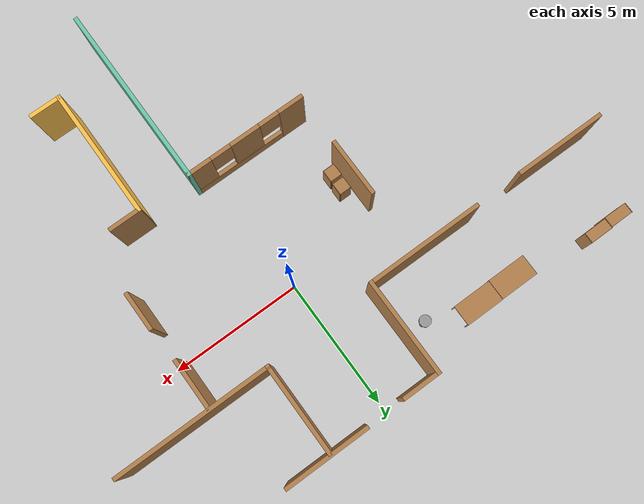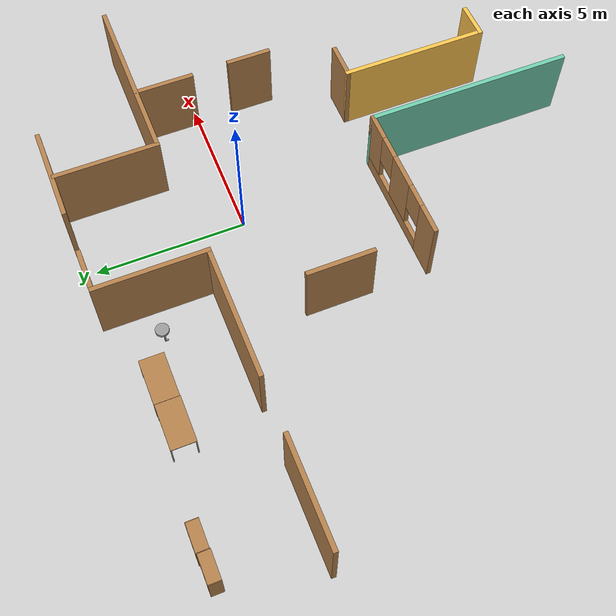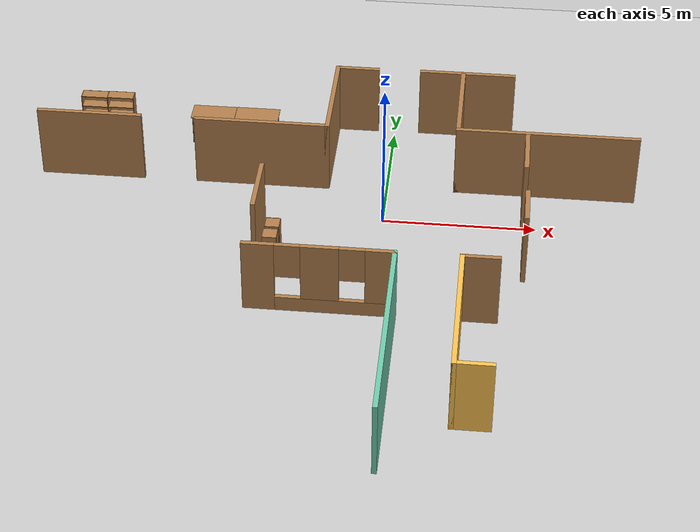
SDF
<sdf version="1.6">
 <world name="default">
  <model name="ground_plane">
   <static>1</static>
   <link name="link">
    <collision name="collision">
     <geometry><plane><normal>0 0 1</normal><size>100 100</size></plane></geometry>
     <surface>
      <contact><collide_bitmask>65535</collide_bitmask></contact>
      <friction><ode><mu>100</mu><mu2>50</mu2></ode></friction>
     </surface>
    </collision>
    <visual name="visual">
     <cast_shadows>0</cast_shadows>
     <geometry><plane><normal>0 0 1</normal><size>100 100</size></plane></geometry>
     <material>
      <script><uri>file://media/materials/scripts/gazebo.material</uri><name>Gazebo/Grey</name></script>
     </material>
    </visual>
   </link>
  </model>
  <model name="Building"><pose>-20.8921 18.7878 0 0 -0 0</pose><static>1</static></model>
  <model name="table">
   <static>1</static>
   <link name="link">
    <collision name="surface">
     <pose>0 0 1 0 -0 0</pose>
     <geometry><box><size>1.5 0.8 0.03</size></box></geometry>
     <surface><friction><ode><mu>0.6</mu><mu2>0.6</mu2></ode></friction></surface>
    </collision>
    <visual name="visual1">
     <pose>0 0 1 0 -0 0</pose>
     <geometry><box><size>1.5 0.8 0.03</size></box></geometry>
     <material>
      <script><uri>file://media/materials/scripts/gazebo.material</uri><name>Gazebo/Wood</name></script>
     </material>
    </visual>
    <collision name="front_left_leg">
     <pose>0.68 0.38 0.5 0 -0 0</pose>
     <geometry><cylinder><radius>0.02</radius><length>1</length></cylinder></geometry>
    </collision>
    <visual name="front_left_leg">
     <pose>0.68 0.38 0.5 0 -0 0</pose>
     <geometry><cylinder><radius>0.02</radius><length>1</length></cylinder></geometry>
     <material>
      <script><uri>file://media/materials/scripts/gazebo.material</uri><name>Gazebo/Grey</name></script>
     </material>
    </visual>
    <collision name="front_right_leg">
     <pose>0.68 -0.38 0.5 0 -0 0</pose>
     <geometry><cylinder><radius>0.02</radius><length>1</length></cylinder></geometry>
    </collision>
    <visual name="front_right_leg">
     <pose>0.68 -0.38 0.5 0 -0 0</pose>
     <geometry><cylinder><radius>0.02</radius><length>1</length></cylinder></geometry>
     <material>
      <script><uri>file://media/materials/scripts/gazebo.material</uri><name>Gazebo/Grey</name></script>
     </material>
    </visual>
    <collision name="back_right_leg">
     <pose>-0.68 -0.38 0.5 0 -0 0</pose>
     <geometry><cylinder><radius>0.02</radius><length>1</length></cylinder></geometry>
    </collision>
    <visual name="back_right_leg">
     <pose>-0.68 -0.38 0.5 0 -0 0</pose>
     <geometry><cylinder><radius>0.02</radius><length>1</length></cylinder></geometry>
     <material>
      <script><uri>file://media/materials/scripts/gazebo.material</uri><name>Gazebo/Grey</name></script>
     </material>
    </visual>
    <collision name="back_left_leg">
     <pose>-0.68 0.38 0.5 0 -0 0</pose>
     <geometry><cylinder><radius>0.02</radius><length>1</length></cylinder></geometry>
    </collision>
    <visual name="back_left_leg">
     <pose>-0.68 0.38 0.5 0 -0 0</pose>
     <geometry><cylinder><radius>0.02</radius><length>1</length></cylinder></geometry>
     <material>
      <script><uri>file://media/materials/scripts/gazebo.material</uri><name>Gazebo/Grey</name></script>
     </material>
    </visual>
   </link>
   <pose>-6.21534 4.30443 0 0 -0 0</pose>
  </model>
  <model name="table_0">
   <static>1</static>
   <link name="link">
    <collision name="surface">
     <pose>0 0 1 0 -0 0</pose>
     <geometry><box><size>1.5 0.8 0.03</size></box></geometry>
     <surface><friction><ode><mu>0.6</mu><mu2>0.6</mu2></ode></friction></surface>
    </collision>
    <visual name="visual1">
     <pose>0 0 1 0 -0 0</pose>
     <geometry><box><size>1.5 0.8 0.03</size></box></geometry>
     <material>
      <script><uri>file://media/materials/scripts/gazebo.material</uri><name>Gazebo/Wood</name></script>
     </material>
    </visual>
    <collision name="front_left_leg">
     <pose>0.68 0.38 0.5 0 -0 0</pose>
     <geometry><cylinder><radius>0.02</radius><length>1</length></cylinder></geometry>
    </collision>
    <visual name="front_left_leg">
     <pose>0.68 0.38 0.5 0 -0 0</pose>
     <geometry><cylinder><radius>0.02</radius><length>1</length></cylinder></geometry>
     <material>
      <script><uri>file://media/materials/scripts/gazebo.material</uri><name>Gazebo/Grey</name></script>
     </material>
    </visual>
    <collision name="front_right_leg">
     <pose>0.68 -0.38 0.5 0 -0 0</pose>
     <geometry><cylinder><radius>0.02</radius><length>1</length></cylinder></geometry>
    </collision>
    <visual name="front_right_leg">
     <pose>0.68 -0.38 0.5 0 -0 0</pose>
     <geometry><cylinder><radius>0.02</radius><length>1</length></cylinder></geometry>
     <material>
      <script><uri>file://media/materials/scripts/gazebo.material</uri><name>Gazebo/Grey</name></script>
     </material>
    </visual>
    <collision name="back_right_leg">
     <pose>-0.68 -0.38 0.5 0 -0 0</pose>
     <geometry><cylinder><radius>0.02</radius><length>1</length></cylinder></geometry>
    </collision>
    <visual name="back_right_leg">
     <pose>-0.68 -0.38 0.5 0 -0 0</pose>
     <geometry><cylinder><radius>0.02</radius><length>1</length></cylinder></geometry>
     <material>
      <script><uri>file://media/materials/scripts/gazebo.material</uri><name>Gazebo/Grey</name></script>
     </material>
    </visual>
    <collision name="back_left_leg">
     <pose>-0.68 0.38 0.5 0 -0 0</pose>
     <geometry><cylinder><radius>0.02</radius><length>1</length></cylinder></geometry>
    </collision>
    <visual name="back_left_leg">
     <pose>-0.68 0.38 0.5 0 -0 0</pose>
     <geometry><cylinder><radius>0.02</radius><length>1</length></cylinder></geometry>
     <material>
      <script><uri>file://media/materials/scripts/gazebo.material</uri><name>Gazebo/Grey</name></script>
     </material>
    </visual>
   </link>
   <pose>-4.70859 4.31668 0 0 -0 0</pose>
  </model>
  <model name="HumanoidRobot">
   <link name="link_0">
    <pose>-0 0.009 0.276 0 -0 0</pose>
    <inertial>
     <mass>1</mass>
     <inertia><ixx>0.145833</ixx><ixy>0</ixy><ixz>0</ixz><iyy>0.145833</iyy><iyz>0</iyz><izz>0.125</izz></inertia>
    </inertial>
    <visual name="visual">
     <geometry><cylinder><radius>0.22</radius><length>0.1</length></cylinder></geometry>
     <material>
      <lighting>1</lighting>
      <script><uri>file://media/materials/scripts/gazebo.material</uri><name>Gazebo/Grey</name></script>
      <shader type="pixel"><normal_map>__default__</normal_map></shader>
      <ambient>0.3 0.3 0.3 1</ambient>
      <diffuse>0.7 0.7 0.7 1</diffuse>
      <specular>0.01 0.01 0.01 1</specular>
      <emissive>0 0 0 1</emissive>
     </material>
    </visual>
    <collision name="collision">
     <geometry><cylinder><radius>0.22</radius><length>0.1</length></cylinder></geometry>
     <surface>
      <friction>
       <ode><mu>1</mu><mu2>1</mu2><fdir1>0 0 0</fdir1><slip1>0</slip1><slip2>0</slip2></ode>
       <torsional>
        <coefficient>1</coefficient>
        <patch_radius>0</patch_radius>
        <surface_radius>0</surface_radius>
        <use_patch_radius>1</use_patch_radius>
        <ode><slip>0</slip></ode>
       </torsional>
      </friction>
      <bounce><restitution_coefficient>0</restitution_coefficient><threshold>1e+06</threshold></bounce>
      <contact>
       <collide_without_contact>0</collide_without_contact>
       <collide_without_contact_bitmask>1</collide_without_contact_bitmask>
       <collide_bitmask>1</collide_bitmask>
       <ode>
        <soft_cfm>0</soft_cfm>
        <soft_erp>0.2</soft_erp>
        <kp>1e+13</kp>
        <kd>1</kd>
        <max_vel>0.01</max_vel>
        <min_depth>0</min_depth>
       </ode>
       <bullet>
        <split_impulse>1</split_impulse>
        <split_impulse_penetration_threshold>-0.01</split_impulse_penetration_threshold>
        <soft_cfm>0</soft_cfm>
        <soft_erp>0.2</soft_erp>
        <kp>1e+13</kp>
        <kd>1</kd>
       </bullet>
      </contact>
     </surface>
    </collision>
   </link>
   <link name="link_1">
    <pose>-0.155 -0.0485 0.026 0 -0 0</pose>
    <inertial>
     <mass>1</mass>
     <inertia>
      <ixx>0.166667</ixx>
      <ixy>0</ixy>
      <ixz>0</ixz>
      <iyy>0.166667</iyy>
      <iyz>0</iyz>
      <izz>0.166667</izz>
     </inertia>
    </inertial>
    <visual name="visual">
     <geometry><box><size>0.05 0.05 0.4</size></box></geometry>
     <material>
      <lighting>1</lighting>
      <script><uri>file://media/materials/scripts/gazebo.material</uri><name>Gazebo/Grey</name></script>
      <shader type="pixel"><normal_map>__default__</normal_map></shader>
      <ambient>0.3 0.3 0.3 1</ambient>
      <diffuse>0.7 0.7 0.7 1</diffuse>
      <specular>0.01 0.01 0.01 1</specular>
      <emissive>0 0 0 1</emissive>
     </material>
    </visual>
    <collision name="collision">
     <geometry><box><size>0.05 0.05 0.4</size></box></geometry>
     <surface>
      <friction>
       <ode><mu>1</mu><mu2>1</mu2><fdir1>0 0 0</fdir1><slip1>0</slip1><slip2>0</slip2></ode>
       <torsional>
        <coefficient>1</coefficient>
        <patch_radius>0</patch_radius>
        <surface_radius>0</surface_radius>
        <use_patch_radius>1</use_patch_radius>
        <ode><slip>0</slip></ode>
       </torsional>
      </friction>
      <bounce><restitution_coefficient>0</restitution_coefficient><threshold>1e+06</threshold></bounce>
      <contact>
       <collide_without_contact>0</collide_without_contact>
       <collide_without_contact_bitmask>1</collide_without_contact_bitmask>
       <collide_bitmask>1</collide_bitmask>
       <ode>
        <soft_cfm>0</soft_cfm>
        <soft_erp>0.2</soft_erp>
        <kp>1e+13</kp>
        <kd>1</kd>
        <max_vel>0.01</max_vel>
        <min_depth>0</min_depth>
       </ode>
       <bullet>
        <split_impulse>1</split_impulse>
        <split_impulse_penetration_threshold>-0.01</split_impulse_penetration_threshold>
        <soft_cfm>0</soft_cfm>
        <soft_erp>0.2</soft_erp>
        <kp>1e+13</kp>
        <kd>1</kd>
       </bullet>
      </contact>
     </surface>
    </collision>
   </link>
   <link name="link_1_clone">
    <pose>0.155 0.009 0.026 0 -0 0</pose>
    <inertial>
     <mass>1</mass>
     <inertia>
      <ixx>0.166667</ixx>
      <ixy>0</ixy>
      <ixz>0</ixz>
      <iyy>0.166667</iyy>
      <iyz>0</iyz>
      <izz>0.166667</izz>
     </inertia>
    </inertial>
    <visual name="visual">
     <geometry><box><size>0.05 0.05 0.4</size></box></geometry>
     <material>
      <lighting>1</lighting>
      <script><uri>file://media/materials/scripts/gazebo.material</uri><name>Gazebo/Grey</name></script>
      <shader type="pixel"><normal_map>__default__</normal_map></shader>
      <ambient>0.3 0.3 0.3 1</ambient>
      <diffuse>0.7 0.7 0.7 1</diffuse>
      <specular>0.01 0.01 0.01 1</specular>
      <emissive>0 0 0 1</emissive>
     </material>
    </visual>
    <collision name="collision">
     <geometry><box><size>0.05 0.05 0.4</size></box></geometry>
     <surface>
      <friction>
       <ode><mu>1</mu><mu2>1</mu2><fdir1>0 0 0</fdir1><slip1>0</slip1><slip2>0</slip2></ode>
       <torsional>
        <coefficient>1</coefficient>
        <patch_radius>0</patch_radius>
        <surface_radius>0</surface_radius>
        <use_patch_radius>1</use_patch_radius>
        <ode><slip>0</slip></ode>
       </torsional>
      </friction>
      <bounce><restitution_coefficient>0</restitution_coefficient><threshold>1e+06</threshold></bounce>
      <contact>
       <collide_without_contact>0</collide_without_contact>
       <collide_without_contact_bitmask>1</collide_without_contact_bitmask>
       <collide_bitmask>1</collide_bitmask>
       <ode>
        <soft_cfm>0</soft_cfm>
        <soft_erp>0.2</soft_erp>
        <kp>1e+13</kp>
        <kd>1</kd>
        <max_vel>0.01</max_vel>
        <min_depth>0</min_depth>
       </ode>
       <bullet>
        <split_impulse>1</split_impulse>
        <split_impulse_penetration_threshold>-0.01</split_impulse_penetration_threshold>
        <soft_cfm>0</soft_cfm>
        <soft_erp>0.2</soft_erp>
        <kp>1e+13</kp>
        <kd>1</kd>
       </bullet>
      </contact>
     </surface>
    </collision>
   </link>
   <link name="link_2">
    <pose>-0.155 -0.0135 -0.164 0 -0 0</pose>
    <inertial>
     <mass>1</mass>
     <inertia>
      <ixx>0.166667</ixx>
      <ixy>0</ixy>
      <ixz>0</ixz>
      <iyy>0.166667</iyy>
      <iyz>0</iyz>
      <izz>0.166667</izz>
     </inertia>
    </inertial>
    <visual name="visual">
     <geometry><box><size>0.05 0.12 0.02</size></box></geometry>
     <material>
      <lighting>1</lighting>
      <script><uri>file://media/materials/scripts/gazebo.material</uri><name>Gazebo/Grey</name></script>
      <shader type="pixel"><normal_map>__default__</normal_map></shader>
      <ambient>0.3 0.3 0.3 1</ambient>
      <diffuse>0.7 0.7 0.7 1</diffuse>
      <specular>0.01 0.01 0.01 1</specular>
      <emissive>0 0 0 1</emissive>
     </material>
    </visual>
    <collision name="collision">
     <geometry><box><size>0.05 0.12 0.02</size></box></geometry>
     <surface>
      <friction>
       <ode><mu>1</mu><mu2>1</mu2><fdir1>0 0 0</fdir1><slip1>0</slip1><slip2>0</slip2></ode>
       <torsional>
        <coefficient>1</coefficient>
        <patch_radius>0</patch_radius>
        <surface_radius>0</surface_radius>
        <use_patch_radius>1</use_patch_radius>
        <ode><slip>0</slip></ode>
       </torsional>
      </friction>
      <bounce><restitution_coefficient>0</restitution_coefficient><threshold>1e+06</threshold></bounce>
      <contact>
       <collide_without_contact>0</collide_without_contact>
       <collide_without_contact_bitmask>1</collide_without_contact_bitmask>
       <collide_bitmask>1</collide_bitmask>
       <ode>
        <soft_cfm>0</soft_cfm>
        <soft_erp>0.2</soft_erp>
        <kp>1e+13</kp>
        <kd>1</kd>
        <max_vel>0.01</max_vel>
        <min_depth>0</min_depth>
       </ode>
       <bullet>
        <split_impulse>1</split_impulse>
        <split_impulse_penetration_threshold>-0.01</split_impulse_penetration_threshold>
        <soft_cfm>0</soft_cfm>
        <soft_erp>0.2</soft_erp>
        <kp>1e+13</kp>
        <kd>1</kd>
       </bullet>
      </contact>
     </surface>
    </collision>
   </link>
   <link name="link_2_clone">
    <pose>0.155 0.044 -0.164 0 -0 0</pose>
    <inertial>
     <mass>1</mass>
     <inertia>
      <ixx>0.166667</ixx>
      <ixy>0</ixy>
      <ixz>0</ixz>
      <iyy>0.166667</iyy>
      <iyz>0</iyz>
      <izz>0.166667</izz>
     </inertia>
    </inertial>
    <visual name="visual">
     <geometry><box><size>0.05 0.12 0.02</size></box></geometry>
     <material>
      <lighting>1</lighting>
      <script><uri>file://media/materials/scripts/gazebo.material</uri><name>Gazebo/Grey</name></script>
      <shader type="pixel"><normal_map>__default__</normal_map></shader>
      <ambient>0.3 0.3 0.3 1</ambient>
      <diffuse>0.7 0.7 0.7 1</diffuse>
      <specular>0.01 0.01 0.01 1</specular>
      <emissive>0 0 0 1</emissive>
     </material>
    </visual>
    <collision name="collision">
     <geometry><box><size>0.05 0.12 0.02</size></box></geometry>
     <surface>
      <friction>
       <ode><mu>1</mu><mu2>1</mu2><fdir1>0 0 0</fdir1><slip1>0</slip1><slip2>0</slip2></ode>
       <torsional>
        <coefficient>1</coefficient>
        <patch_radius>0</patch_radius>
        <surface_radius>0</surface_radius>
        <use_patch_radius>1</use_patch_radius>
        <ode><slip>0</slip></ode>
       </torsional>
      </friction>
      <bounce><restitution_coefficient>0</restitution_coefficient><threshold>1e+06</threshold></bounce>
      <contact>
       <collide_without_contact>0</collide_without_contact>
       <collide_without_contact_bitmask>1</collide_without_contact_bitmask>
       <collide_bitmask>1</collide_bitmask>
       <ode>
        <soft_cfm>0</soft_cfm>
        <soft_erp>0.2</soft_erp>
        <kp>1e+13</kp>
        <kd>1</kd>
        <max_vel>0.01</max_vel>
        <min_depth>0</min_depth>
       </ode>
       <bullet>
        <split_impulse>1</split_impulse>
        <split_impulse_penetration_threshold>-0.01</split_impulse_penetration_threshold>
        <soft_cfm>0</soft_cfm>
        <soft_erp>0.2</soft_erp>
        <kp>1e+13</kp>
        <kd>1</kd>
       </bullet>
      </contact>
     </surface>
    </collision>
   </link>
   <joint name="link_0_JOINT_2" type="revolute">
    <parent>link_0</parent>
    <child>link_1</child>
    <axis>
     <xyz>0 0 1</xyz>
     <use_parent_model_frame>0</use_parent_model_frame>
     <limit>
      <lower>-1.79769e+308</lower>
      <upper>1.79769e+308</upper>
      <effort>-1</effort>
      <velocity>-1</velocity>
     </limit>
     <dynamics>
      <spring_reference>0</spring_reference>
      <spring_stiffness>0</spring_stiffness>
      <damping>0</damping>
     </dynamics>
    </axis>
    <physics>
     <ode><limit><cfm>0</cfm><erp>0.2</erp></limit><suspension><cfm>0</cfm><erp>0.2</erp></suspension></ode>
    </physics>
   </joint>
   <joint name="link_0_JOINT_3" type="revolute">
    <parent>link_0</parent>
    <child>link_1_clone</child>
    <axis>
     <xyz>0 0 1</xyz>
     <use_parent_model_frame>0</use_parent_model_frame>
     <limit>
      <lower>-1.79769e+308</lower>
      <upper>1.79769e+308</upper>
      <effort>-1</effort>
      <velocity>-1</velocity>
     </limit>
     <dynamics>
      <spring_reference>0</spring_reference>
      <spring_stiffness>0</spring_stiffness>
      <damping>0</damping>
     </dynamics>
    </axis>
    <physics>
     <ode><limit><cfm>0</cfm><erp>0.2</erp></limit><suspension><cfm>0</cfm><erp>0.2</erp></suspension></ode>
    </physics>
   </joint>
   <joint name="link_1_JOINT_4" type="revolute">
    <parent>link_1</parent>
    <child>link_2</child>
    <axis>
     <xyz>0 0 1</xyz>
     <use_parent_model_frame>0</use_parent_model_frame>
     <limit>
      <lower>-1.79769e+308</lower>
      <upper>1.79769e+308</upper>
      <effort>-1</effort>
      <velocity>-1</velocity>
     </limit>
     <dynamics>
      <spring_reference>0</spring_reference>
      <spring_stiffness>0</spring_stiffness>
      <damping>0</damping>
     </dynamics>
    </axis>
    <physics>
     <ode><limit><cfm>0</cfm><erp>0.2</erp></limit><suspension><cfm>0</cfm><erp>0.2</erp></suspension></ode>
    </physics>
   </joint>
   <joint name="link_1_clone_JOINT_5" type="revolute">
    <parent>link_1_clone</parent>
    <child>link_2_clone</child>
    <axis>
     <xyz>0 0 1</xyz>
     <use_parent_model_frame>0</use_parent_model_frame>
     <limit>
      <lower>-1.79769e+308</lower>
      <upper>1.79769e+308</upper>
      <effort>-1</effort>
      <velocity>-1</velocity>
     </limit>
     <dynamics>
      <spring_reference>0</spring_reference>
      <spring_stiffness>0</spring_stiffness>
      <damping>0</damping>
     </dynamics>
    </axis>
    <physics>
     <ode><limit><cfm>0</cfm><erp>0.2</erp></limit><suspension><cfm>0</cfm><erp>0.2</erp></suspension></ode>
    </physics>
   </joint>
   <static>0</static>
   <pose>-2.9489 3.72008 0.174 -1e-06 1e-06 -3.04793</pose>
  </model>
  <model name="Untitled">
   <pose>-1.7355 -3.158 0 0 -0 0</pose>
   <link name="Wall_11">
    <collision name="Wall_11_Collision">
     <geometry><box><size>3.25 0.15 2.5</size></box></geometry>
     <pose>0 0 1.25 0 -0 0</pose>
    </collision>
    <visual name="Wall_11_Visual">
     <pose>0 0 1.25 0 -0 0</pose>
     <geometry><box><size>3.25 0.15 2.5</size></box></geometry>
     <material>
      <script><uri>file://media/materials/scripts/gazebo.material</uri><name>Gazebo/Wood</name></script>
      <ambient>1 1 1 1</ambient>
     </material>
     <meta><layer>0</layer></meta>
    </visual>
    <pose>4.1755 8.508 0 0 -0 0</pose>
   </link>
   <link name="Wall_13">
    <collision name="Wall_13_Collision">
     <geometry><box><size>3.5 0.15 2.5</size></box></geometry>
     <pose>0 0 1.25 0 -0 0</pose>
    </collision>
    <visual name="Wall_13_Visual">
     <pose>0 0 1.25 0 -0 0</pose>
     <geometry><box><size>3.5 0.15 2.5</size></box></geometry>
     <material>
      <script><uri>file://media/materials/scripts/gazebo.material</uri><name>Gazebo/Wood</name></script>
      <ambient>1 1 1 1</ambient>
     </material>
     <meta><layer>0</layer></meta>
    </visual>
    <pose>4.0285 6.764 0 0 0 -1.5708</pose>
   </link>
   <link name="Wall_14">
    <collision name="Wall_14_Collision">
     <geometry><box><size>6 0.15 2.5</size></box></geometry>
     <pose>0 0 1.25 0 -0 0</pose>
    </collision>
    <visual name="Wall_14_Visual">
     <pose>0 0 1.25 0 -0 0</pose>
     <geometry><box><size>6 0.15 2.5</size></box></geometry>
     <material>
      <script><uri>file://media/materials/scripts/gazebo.material</uri><name>Gazebo/Wood</name></script>
      <ambient>1 1 1 1</ambient>
     </material>
     <meta><layer>0</layer></meta>
    </visual>
    <pose>6.9535 5.089 0 0 -0 0</pose>
   </link>
   <link name="Wall_18">
    <collision name="Wall_18_Collision">
     <geometry><box><size>3.5 0.15 2.5</size></box></geometry>
     <pose>0 0 1.25 0 -0 0</pose>
    </collision>
    <visual name="Wall_18_Visual">
     <pose>0 0 1.25 0 -0 0</pose>
     <geometry><box><size>3.5 0.15 2.5</size></box></geometry>
     <material>
      <script><uri>file://media/materials/scripts/gazebo.material</uri><name>Gazebo/Wood</name></script>
      <ambient>1 1 1 1</ambient>
     </material>
     <meta><layer>0</layer></meta>
    </visual>
    <pose>-8.2035 4.851 0 0 -0 3.14159</pose>
   </link>
   <link name="Wall_22">
    <pose>0.1645 -1.658 0 0 -0 0</pose>
    <visual name="Wall_22_Visual_0">
     <pose>-1.8705 0 1.25 0 -0 0</pose>
     <geometry><box><size>1.009 0.15 2.5</size></box></geometry>
     <material>
      <script><uri>file://media/materials/scripts/gazebo.material</uri><name>Gazebo/Wood</name></script>
      <ambient>1 0.764706 0.305882 1</ambient>
     </material>
     <meta><layer>0</layer></meta>
    </visual>
    <collision name="Wall_22_Collision_0">
     <geometry><box><size>1.009 0.15 2.5</size></box></geometry>
     <pose>-1.8705 0 1.25 0 -0 0</pose>
    </collision>
    <visual name="Wall_22_Visual_1">
     <pose>0.5045 0 0.25 0 -0 0</pose>
     <geometry><box><size>3.741 0.15 0.5</size></box></geometry>
     <material>
      <script><uri>file://media/materials/scripts/gazebo.material</uri><name>Gazebo/Wood</name></script>
      <ambient>1 0.764706 0.305882 1</ambient>
     </material>
     <meta><layer>0</layer></meta>
    </visual>
    <collision name="Wall_22_Collision_1">
     <geometry><box><size>3.741 0.15 0.5</size></box></geometry>
     <pose>0.5045 0 0.25 0 -0 0</pose>
    </collision>
    <visual name="Wall_22_Visual_2">
     <pose>0.023 0 1.5 0 -0 0</pose>
     <geometry><box><size>1.178 0.15 2</size></box></geometry>
     <material>
      <script><uri>file://media/materials/scripts/gazebo.material</uri><name>Gazebo/Wood</name></script>
      <ambient>1 0.764706 0.305882 1</ambient>
     </material>
     <meta><layer>0</layer></meta>
    </visual>
    <collision name="Wall_22_Collision_2">
     <geometry><box><size>1.178 0.15 2</size></box></geometry>
     <pose>0.023 0 1.5 0 -0 0</pose>
    </collision>
    <visual name="Wall_22_Visual_3">
     <pose>1.8935 0 1.5 0 -0 0</pose>
     <geometry><box><size>0.963 0.15 2</size></box></geometry>
     <material>
      <script><uri>file://media/materials/scripts/gazebo.material</uri><name>Gazebo/Wood</name></script>
      <ambient>1 0.764706 0.305882 1</ambient>
     </material>
     <meta><layer>0</layer></meta>
    </visual>
    <collision name="Wall_22_Collision_3">
     <geometry><box><size>0.963 0.15 2</size></box></geometry>
     <pose>1.8935 0 1.5 0 -0 0</pose>
    </collision>
    <visual name="Wall_22_Visual_4">
     <pose>-0.966 0 1.9 0 -0 0</pose>
     <geometry><box><size>0.8 0.15 1.2</size></box></geometry>
     <material>
      <script><uri>file://media/materials/scripts/gazebo.material</uri><name>Gazebo/Wood</name></script>
      <ambient>1 0.764706 0.305882 1</ambient>
     </material>
     <meta><layer>0</layer></meta>
    </visual>
    <collision name="Wall_22_Collision_4">
     <geometry><box><size>0.8 0.15 1.2</size></box></geometry>
     <pose>-0.966 0 1.9 0 -0 0</pose>
    </collision>
    <visual name="Wall_22_Visual_5">
     <pose>1.012 0 1.9 0 -0 0</pose>
     <geometry><box><size>0.8 0.15 1.2</size></box></geometry>
     <material>
      <script><uri>file://media/materials/scripts/gazebo.material</uri><name>Gazebo/Wood</name></script>
      <ambient>1 0.764706 0.305882 1</ambient>
     </material>
     <meta><layer>0</layer></meta>
    </visual>
    <collision name="Wall_22_Collision_5">
     <geometry><box><size>0.8 0.15 1.2</size></box></geometry>
     <pose>1.012 0 1.9 0 -0 0</pose>
    </collision>
   </link>
   <link name="Wall_24">
    <collision name="Wall_24_Collision">
     <geometry><box><size>1.25 0.15 2.5</size></box></geometry>
     <pose>0 0 1.25 0 -0 0</pose>
    </collision>
    <visual name="Wall_24_Visual">
     <pose>0 0 1.25 0 -0 0</pose>
     <geometry><box><size>1.25 0.15 2.5</size></box></geometry>
     <material>
      <script><uri>file://media/materials/scripts/gazebo.material</uri><name>Gazebo/Wood</name></script>
      <ambient>1 1 1 1</ambient>
     </material>
     <meta><layer>0</layer></meta>
    </visual>
    <pose>5.0385 -1.635 0 0 -0 0</pose>
   </link>
   <link name="Wall_26">
    <collision name="Wall_26_Collision">
     <geometry><box><size>2 0.15 2.5</size></box></geometry>
     <pose>0 0 1.25 0 -0 0</pose>
    </collision>
    <visual name="Wall_26_Visual">
     <pose>0 0 1.25 0 -0 0</pose>
     <geometry><box><size>2 0.15 2.5</size></box></geometry>
     <material>
      <script><uri>file://media/materials/scripts/gazebo.material</uri><name>Gazebo/Wood</name></script>
      <ambient>1 1 1 1</ambient>
     </material>
     <meta><layer>0</layer></meta>
    </visual>
    <pose>6.3055 4.133 0 0 0 -1.5708</pose>
   </link>
   <link name="Wall_29">
    <collision name="Wall_29_Collision">
     <geometry><box><size>1.5 0.15 2.5</size></box></geometry>
     <pose>0 0 1.25 0 -0 0</pose>
    </collision>
    <visual name="Wall_29_Visual">
     <pose>0 0 1.25 0 -0 0</pose>
     <geometry><box><size>1.5 0.15 2.5</size></box></geometry>
     <material>
      <script><uri>file://media/materials/scripts/gazebo.material</uri><name>Gazebo/Wood</name></script>
      <ambient>1 1 1 1</ambient>
     </material>
     <meta><layer>0</layer></meta>
    </visual>
    <pose>6.3745 1.163 0 0 0 -1.5708</pose>
   </link>
   <link name="Wall_31">
    <collision name="Wall_31_Collision">
     <geometry><box><size>4.5 0.15 2.5</size></box></geometry>
     <pose>0 0 1.25 0 -0 0</pose>
    </collision>
    <visual name="Wall_31_Visual">
     <pose>0 0 1.25 0 -0 0</pose>
     <geometry><box><size>4.5 0.15 2.5</size></box></geometry>
     <material>
      <script><uri>file://media/materials/scripts/gazebo.material</uri><name>Gazebo/Wood</name></script>
      <ambient>1 1 1 1</ambient>
     </material>
     <meta><layer>0</layer></meta>
    </visual>
    <pose>-2.4445 4.874 0 0 -0 0</pose>
   </link>
   <link name="Wall_32">
    <collision name="Wall_32_Collision">
     <geometry><box><size>3.75 0.15 2.5</size></box></geometry>
     <pose>0 0 1.25 0 -0 0</pose>
    </collision>
    <visual name="Wall_32_Visual">
     <pose>0 0 1.25 0 -0 0</pose>
     <geometry><box><size>3.75 0.15 2.5</size></box></geometry>
     <material>
      <script><uri>file://media/materials/scripts/gazebo.material</uri><name>Gazebo/Wood</name></script>
      <ambient>1 1 1 1</ambient>
     </material>
     <meta><layer>0</layer></meta>
    </visual>
    <pose>-0.2695 6.674 0 0 -0 1.5708</pose>
   </link>
   <link name="Wall_33">
    <collision name="Wall_33_Collision">
     <geometry><box><size>1.5 0.15 2.5</size></box></geometry>
     <pose>0 0 1.25 0 -0 0</pose>
    </collision>
    <visual name="Wall_33_Visual">
     <pose>0 0 1.25 0 -0 0</pose>
     <geometry><box><size>1.5 0.15 2.5</size></box></geometry>
     <material>
      <script><uri>file://media/materials/scripts/gazebo.material</uri><name>Gazebo/Wood</name></script>
      <ambient>1 1 1 1</ambient>
     </material>
     <meta><layer>0</layer></meta>
    </visual>
    <pose>0.4055 8.474 0 0 -0 0</pose>
   </link>
   <link name="Wall_40">
    <collision name="Wall_40_Collision">
     <geometry><box><size>7 0.15 2.5</size></box></geometry>
     <pose>0 0 1.25 0 -0 0</pose>
    </collision>
    <visual name="Wall_40_Visual">
     <pose>0 0 1.25 0 -0 0</pose>
     <geometry><box><size>7 0.15 2.5</size></box></geometry>
     <material>
      <script><uri>file://media/materials/scripts/gazebo.material</uri><name>Gazebo/Grey</name></script>
      <ambient>0.435294 0.796078 0.67451 1</ambient>
     </material>
     <meta><layer>0</layer></meta>
    </visual>
    <pose>2.4645 -5.083 0 0 0 -1.5708</pose>
   </link>
   <link name="Wall_42">
    <collision name="Wall_42_Collision">
     <geometry><box><size>5 0.15 2.5</size></box></geometry>
     <pose>0 0 1.25 0 -0 0</pose>
    </collision>
    <visual name="Wall_42_Visual">
     <pose>0 0 1.25 0 -0 0</pose>
     <geometry><box><size>5 0.15 2.5</size></box></geometry>
     <material>
      <script><uri>file://media/materials/scripts/gazebo.material</uri><name>Gazebo/Grey</name></script>
      <ambient>1 0.764706 0.305882 1</ambient>
     </material>
     <meta><layer>0</layer></meta>
    </visual>
    <pose>4.4885 -4.06 0 0 0 -1.5708</pose>
   </link>
   <link name="Wall_43">
    <collision name="Wall_43_Collision">
     <geometry><box><size>1.25 0.15 2.5</size></box></geometry>
     <pose>0 0 1.25 0 -0 0</pose>
    </collision>
    <visual name="Wall_43_Visual">
     <pose>0 0 1.25 0 -0 0</pose>
     <geometry><box><size>1.25 0.15 2.5</size></box></geometry>
     <material>
      <script><uri>file://media/materials/scripts/gazebo.material</uri><name>Gazebo/Grey</name></script>
      <ambient>1 0.764706 0.305882 1</ambient>
     </material>
     <meta><layer>0</layer></meta>
    </visual>
    <pose>5.0385 -6.485 0 0 -0 0</pose>
   </link>
   <link name="Wall_6">
    <collision name="Wall_6_Collision">
     <geometry><box><size>2.25 0.15 2.5</size></box></geometry>
     <pose>0 0 1.25 0 -0 0</pose>
    </collision>
    <visual name="Wall_6_Visual">
     <pose>0 0 1.25 0 -0 0</pose>
     <geometry><box><size>2.25 0.15 2.5</size></box></geometry>
     <material>
      <script><uri>file://media/materials/scripts/gazebo.material</uri><name>Gazebo/Wood</name></script>
      <ambient>1 1 1 1</ambient>
     </material>
     <meta><layer>0</layer></meta>
    </visual>
    <pose>-2.1125 1.392 0 0 0 -1.5708</pose>
   </link>
   <static>1</static>
  </model>
  <model name="cabinet">
   <static>1</static>
   <link name="cabinet_bottom_plate">
    <inertial>
     <pose>0 0 -1 0 -0 0</pose>
     <inertia><ixx>2.05</ixx><ixy>0</ixy><ixz>0</ixz><iyy>2.05</iyy><iyz>0</iyz><izz>2.05</izz></inertia>
     <mass>25</mass>
    </inertial>
    <collision name="cabinet_bottom_plate_geom">
     <pose>0 0 0.01 0 -0 0</pose>
     <geometry><box><size>0.45 0.45 0.02</size></box></geometry>
    </collision>
    <visual name="cabinet_bottom_plate_geom_visual">
     <pose>0 0 0.01 0 -0 0</pose>
     <geometry><box><size>0.45 0.45 0.02</size></box></geometry>
     <material>
      <script><uri>file://media/materials/scripts/gazebo.material</uri><name>Gazebo/Wood</name></script>
     </material>
    </visual>
    <collision name="cabinet_bottom_plate_geom_cabinet_back_plate">
     <pose>0.235 0 0.51 0 -0 0</pose>
     <geometry><box><size>0.02 0.45 1.02</size></box></geometry>
    </collision>
    <visual name="cabinet_bottom_plate_geom_cabinet_back_plate_visual">
     <pose>0.235 0 0.51 0 -0 0</pose>
     <geometry><box><size>0.02 0.45 1.02</size></box></geometry>
     <material>
      <script><uri>file://media/materials/scripts/gazebo.material</uri><name>Gazebo/Wood</name></script>
     </material>
    </visual>
    <collision name="cabinet_bottom_plate_geom_cabinet_left_plate">
     <pose>0 0.235 0.51 0 -0 0</pose>
     <geometry><box><size>0.45 0.02 1.02</size></box></geometry>
    </collision>
    <visual name="cabinet_bottom_plate_geom_cabinet_left_plate_visual">
     <pose>0 0.235 0.51 0 -0 0</pose>
     <geometry><box><size>0.45 0.02 1.02</size></box></geometry>
     <material>
      <script><uri>file://media/materials/scripts/gazebo.material</uri><name>Gazebo/Wood</name></script>
     </material>
    </visual>
    <collision name="cabinet_bottom_plate_geom_cabinet_middle_plate">
     <pose>0 0 0.51 0 -0 0</pose>
     <geometry><box><size>0.45 0.45 0.02</size></box></geometry>
    </collision>
    <visual name="cabinet_bottom_plate_geom_cabinet_middle_plate_visual">
     <pose>0 0 0.51 0 -0 0</pose>
     <geometry><box><size>0.45 0.45 0.02</size></box></geometry>
     <material>
      <script><uri>file://media/materials/scripts/gazebo.material</uri><name>Gazebo/Wood</name></script>
     </material>
    </visual>
    <collision name="cabinet_bottom_plate_geom_cabinet_right_plate">
     <pose>0 -0.235 0.51 0 -0 0</pose>
     <geometry><box><size>0.45 0.02 1.02</size></box></geometry>
    </collision>
    <visual name="cabinet_bottom_plate_geom_cabinet_right_plate_visual">
     <pose>0 -0.235 0.51 0 -0 0</pose>
     <geometry><box><size>0.45 0.02 1.02</size></box></geometry>
     <material>
      <script><uri>file://media/materials/scripts/gazebo.material</uri><name>Gazebo/Wood</name></script>
     </material>
    </visual>
    <collision name="cabinet_bottom_plate_geom_cabinet_top_plate">
     <pose>0 0 1.01 0 -0 0</pose>
     <geometry><box><size>0.45 0.45 0.02</size></box></geometry>
    </collision>
    <visual name="cabinet_bottom_plate_geom_cabinet_top_plate_visual">
     <pose>0 0 1.01 0 -0 0</pose>
     <geometry><box><size>0.45 0.45 0.02</size></box></geometry>
     <material>
      <script><uri>file://media/materials/scripts/gazebo.material</uri><name>Gazebo/Wood</name></script>
     </material>
    </visual>
   </link>
   <pose>-3.40721 -2.35223 0 0 -0 0</pose>
  </model>
  <model name="cabinet_0">
   <static>1</static>
   <link name="cabinet_bottom_plate">
    <inertial>
     <pose>0 0 -1 0 -0 0</pose>
     <inertia><ixx>2.05</ixx><ixy>0</ixy><ixz>0</ixz><iyy>2.05</iyy><iyz>0</iyz><izz>2.05</izz></inertia>
     <mass>25</mass>
    </inertial>
    <collision name="cabinet_bottom_plate_geom">
     <pose>0 0 0.01 0 -0 0</pose>
     <geometry><box><size>0.45 0.45 0.02</size></box></geometry>
    </collision>
    <visual name="cabinet_bottom_plate_geom_visual">
     <pose>0 0 0.01 0 -0 0</pose>
     <geometry><box><size>0.45 0.45 0.02</size></box></geometry>
     <material>
      <script><uri>file://media/materials/scripts/gazebo.material</uri><name>Gazebo/Wood</name></script>
     </material>
    </visual>
    <collision name="cabinet_bottom_plate_geom_cabinet_back_plate">
     <pose>0.235 0 0.51 0 -0 0</pose>
     <geometry><box><size>0.02 0.45 1.02</size></box></geometry>
    </collision>
    <visual name="cabinet_bottom_plate_geom_cabinet_back_plate_visual">
     <pose>0.235 0 0.51 0 -0 0</pose>
     <geometry><box><size>0.02 0.45 1.02</size></box></geometry>
     <material>
      <script><uri>file://media/materials/scripts/gazebo.material</uri><name>Gazebo/Wood</name></script>
     </material>
    </visual>
    <collision name="cabinet_bottom_plate_geom_cabinet_left_plate">
     <pose>0 0.235 0.51 0 -0 0</pose>
     <geometry><box><size>0.45 0.02 1.02</size></box></geometry>
    </collision>
    <visual name="cabinet_bottom_plate_geom_cabinet_left_plate_visual">
     <pose>0 0.235 0.51 0 -0 0</pose>
     <geometry><box><size>0.45 0.02 1.02</size></box></geometry>
     <material>
      <script><uri>file://media/materials/scripts/gazebo.material</uri><name>Gazebo/Wood</name></script>
     </material>
    </visual>
    <collision name="cabinet_bottom_plate_geom_cabinet_middle_plate">
     <pose>0 0 0.51 0 -0 0</pose>
     <geometry><box><size>0.45 0.45 0.02</size></box></geometry>
    </collision>
    <visual name="cabinet_bottom_plate_geom_cabinet_middle_plate_visual">
     <pose>0 0 0.51 0 -0 0</pose>
     <geometry><box><size>0.45 0.45 0.02</size></box></geometry>
     <material>
      <script><uri>file://media/materials/scripts/gazebo.material</uri><name>Gazebo/Wood</name></script>
     </material>
    </visual>
    <collision name="cabinet_bottom_plate_geom_cabinet_right_plate">
     <pose>0 -0.235 0.51 0 -0 0</pose>
     <geometry><box><size>0.45 0.02 1.02</size></box></geometry>
    </collision>
    <visual name="cabinet_bottom_plate_geom_cabinet_right_plate_visual">
     <pose>0 -0.235 0.51 0 -0 0</pose>
     <geometry><box><size>0.45 0.02 1.02</size></box></geometry>
     <material>
      <script><uri>file://media/materials/scripts/gazebo.material</uri><name>Gazebo/Wood</name></script>
     </material>
    </visual>
    <collision name="cabinet_bottom_plate_geom_cabinet_top_plate">
     <pose>0 0 1.01 0 -0 0</pose>
     <geometry><box><size>0.45 0.45 0.02</size></box></geometry>
    </collision>
    <visual name="cabinet_bottom_plate_geom_cabinet_top_plate_visual">
     <pose>0 0 1.01 0 -0 0</pose>
     <geometry><box><size>0.45 0.45 0.02</size></box></geometry>
     <material>
      <script><uri>file://media/materials/scripts/gazebo.material</uri><name>Gazebo/Wood</name></script>
     </material>
    </visual>
   </link>
   <pose>-3.39336 -1.78509 0 0 -0 0</pose>
  </model>
  <model name="bookshelf_1">
   <static>1</static>
   <link name="link">
    <inertial><mass>1</mass></inertial>
    <collision name="back">
     <pose>0 0.005 0.6 0 -0 0</pose>
     <geometry><box><size>0.9 0.01 1.2</size></box></geometry>
    </collision>
    <visual name="visual1">
     <pose>0 0.005 0.6 0 -0 0</pose>
     <geometry><box><size>0.9 0.01 1.2</size></box></geometry>
     <material>
      <script><uri>file://media/materials/scripts/gazebo.material</uri><name>Gazebo/Wood</name></script>
     </material>
    </visual>
    <collision name="left_side">
     <pose>0.45 -0.195 0.6 0 -0 0</pose>
     <geometry><box><size>0.02 0.4 1.2</size></box></geometry>
    </collision>
    <visual name="visual2">
     <pose>0.45 -0.195 0.6 0 -0 0</pose>
     <geometry><box><size>0.02 0.4 1.2</size></box></geometry>
     <material>
      <script><uri>file://media/materials/scripts/gazebo.material</uri><name>Gazebo/Wood</name></script>
     </material>
    </visual>
    <collision name="right_side">
     <pose>-0.45 -0.195 0.6 0 -0 0</pose>
     <geometry><box><size>0.02 0.4 1.2</size></box></geometry>
    </collision>
    <visual name="visual3">
     <pose>-0.45 -0.195 0.6 0 -0 0</pose>
     <geometry><box><size>0.02 0.4 1.2</size></box></geometry>
     <material>
      <script><uri>file://media/materials/scripts/gazebo.material</uri><name>Gazebo/Wood</name></script>
     </material>
    </visual>
    <collision name="bottom">
     <pose>0 -0.195 0.03 0 -0 0</pose>
     <geometry><box><size>0.88 0.4 0.06</size></box></geometry>
    </collision>
    <visual name="visual4">
     <pose>0 -0.195 0.03 0 -0 0</pose>
     <geometry><box><size>0.88 0.4 0.06</size></box></geometry>
     <material>
      <script><uri>file://media/materials/scripts/gazebo.material</uri><name>Gazebo/Wood</name></script>
     </material>
    </visual>
    <collision name="top">
     <pose>0 -0.195 1.19 0 -0 0</pose>
     <geometry><box><size>0.88 0.4 0.02</size></box></geometry>
    </collision>
    <visual name="visual5">
     <pose>0 -0.195 1.19 0 -0 0</pose>
     <geometry><box><size>0.88 0.4 0.02</size></box></geometry>
     <material>
      <script><uri>file://media/materials/scripts/gazebo.material</uri><name>Gazebo/Wood</name></script>
     </material>
    </visual>
    <collision name="low_shelf">
     <pose>0 -0.195 0.43 0 -0 0</pose>
     <geometry><box><size>0.88 0.4 0.02</size></box></geometry>
    </collision>
    <visual name="visual6">
     <pose>0 -0.195 0.43 0 -0 0</pose>
     <geometry><box><size>0.88 0.4 0.02</size></box></geometry>
     <material>
      <script><uri>file://media/materials/scripts/gazebo.material</uri><name>Gazebo/Wood</name></script>
     </material>
    </visual>
    <collision name="high_shelf">
     <pose>0 -0.195 0.8 0 -0 0</pose>
     <geometry><box><size>0.88 0.4 0.02</size></box></geometry>
    </collision>
    <visual name="visual7">
     <pose>0 -0.195 0.8 0 -0 0</pose>
     <geometry><box><size>0.88 0.4 0.02</size></box></geometry>
     <material>
      <script><uri>file://media/materials/scripts/gazebo.material</uri><name>Gazebo/Wood</name></script>
     </material>
    </visual>
   </link>
   <pose>-9.55689 4.9834 0 0 -0 0</pose>
  </model>
  <model name="bookshelf_2">
   <static>1</static>
   <link name="link">
    <inertial><mass>1</mass></inertial>
    <collision name="back">
     <pose>0 0.005 0.6 0 -0 0</pose>
     <geometry><box><size>0.9 0.01 1.2</size></box></geometry>
    </collision>
    <visual name="visual1">
     <pose>0 0.005 0.6 0 -0 0</pose>
     <geometry><box><size>0.9 0.01 1.2</size></box></geometry>
     <material>
      <script><uri>file://media/materials/scripts/gazebo.material</uri><name>Gazebo/Wood</name></script>
     </material>
    </visual>
    <collision name="left_side">
     <pose>0.45 -0.195 0.6 0 -0 0</pose>
     <geometry><box><size>0.02 0.4 1.2</size></box></geometry>
    </collision>
    <visual name="visual2">
     <pose>0.45 -0.195 0.6 0 -0 0</pose>
     <geometry><box><size>0.02 0.4 1.2</size></box></geometry>
     <material>
      <script><uri>file://media/materials/scripts/gazebo.material</uri><name>Gazebo/Wood</name></script>
     </material>
    </visual>
    <collision name="right_side">
     <pose>-0.45 -0.195 0.6 0 -0 0</pose>
     <geometry><box><size>0.02 0.4 1.2</size></box></geometry>
    </collision>
    <visual name="visual3">
     <pose>-0.45 -0.195 0.6 0 -0 0</pose>
     <geometry><box><size>0.02 0.4 1.2</size></box></geometry>
     <material>
      <script><uri>file://media/materials/scripts/gazebo.material</uri><name>Gazebo/Wood</name></script>
     </material>
    </visual>
    <collision name="bottom">
     <pose>0 -0.195 0.03 0 -0 0</pose>
     <geometry><box><size>0.88 0.4 0.06</size></box></geometry>
    </collision>
    <visual name="visual4">
     <pose>0 -0.195 0.03 0 -0 0</pose>
     <geometry><box><size>0.88 0.4 0.06</size></box></geometry>
     <material>
      <script><uri>file://media/materials/scripts/gazebo.material</uri><name>Gazebo/Wood</name></script>
     </material>
    </visual>
    <collision name="top">
     <pose>0 -0.195 1.19 0 -0 0</pose>
     <geometry><box><size>0.88 0.4 0.02</size></box></geometry>
    </collision>
    <visual name="visual5">
     <pose>0 -0.195 1.19 0 -0 0</pose>
     <geometry><box><size>0.88 0.4 0.02</size></box></geometry>
     <material>
      <script><uri>file://media/materials/scripts/gazebo.material</uri><name>Gazebo/Wood</name></script>
     </material>
    </visual>
    <collision name="low_shelf">
     <pose>0 -0.195 0.43 0 -0 0</pose>
     <geometry><box><size>0.88 0.4 0.02</size></box></geometry>
    </collision>
    <visual name="visual6">
     <pose>0 -0.195 0.43 0 -0 0</pose>
     <geometry><box><size>0.88 0.4 0.02</size></box></geometry>
     <material>
      <script><uri>file://media/materials/scripts/gazebo.material</uri><name>Gazebo/Wood</name></script>
     </material>
    </visual>
    <collision name="high_shelf">
     <pose>0 -0.195 0.8 0 -0 0</pose>
     <geometry><box><size>0.88 0.4 0.02</size></box></geometry>
    </collision>
    <visual name="visual7">
     <pose>0 -0.195 0.8 0 -0 0</pose>
     <geometry><box><size>0.88 0.4 0.02</size></box></geometry>
     <material>
      <script><uri>file://media/materials/scripts/gazebo.material</uri><name>Gazebo/Wood</name></script>
     </material>
    </visual>
   </link>
   <pose>-10.4635 4.95688 0 0 -0 0</pose>
  </model>
 </world>
</sdf>
